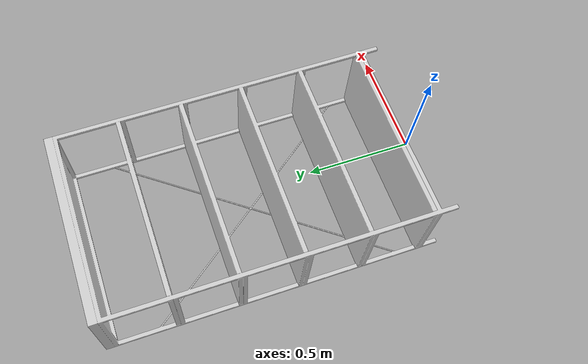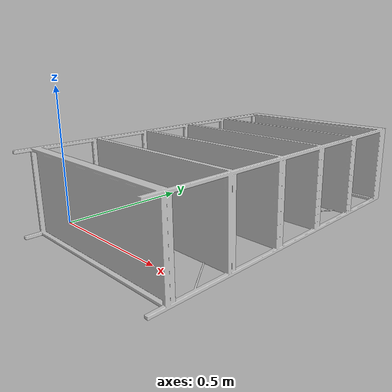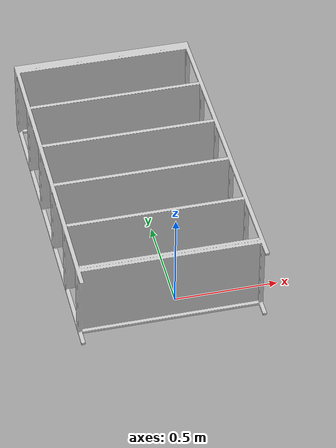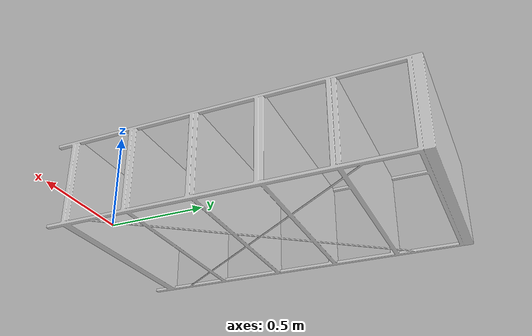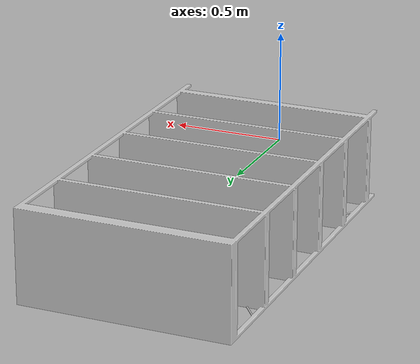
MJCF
<mujoco model="bookshelf_scaled">
  <default>
    <default class="visual">
      <geom group="2" type="mesh" contype="0" conaffinity="0"/>
    </default>
    <default class="collision">
      <geom group="3" type="mesh"/>
    </default>
  </default>
  <asset>
    <material name="wire_000000000" specular="0.5" shininess="0.224999985" rgba="0.800000 0.800000 0.800000 1.000000"/>
    <mesh file="bookshelf_scaled.obj"/>
  </asset>
  <worldbody>
    <body name="bookshelf_scaled">
      <geom material="wire_000000000" mesh="bookshelf_scaled" class="visual"/>
      <geom mesh="bookshelf_scaled" class="collision"/>
    </body>
  </worldbody>
</mujoco>
